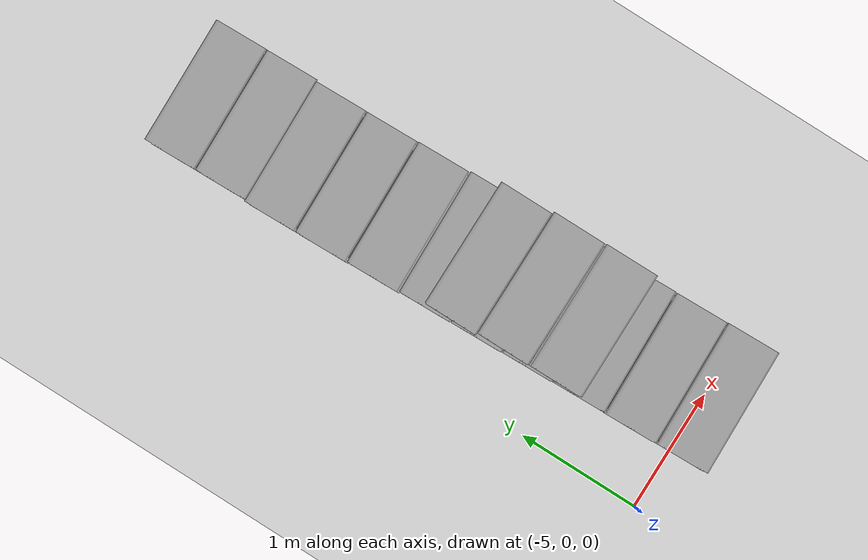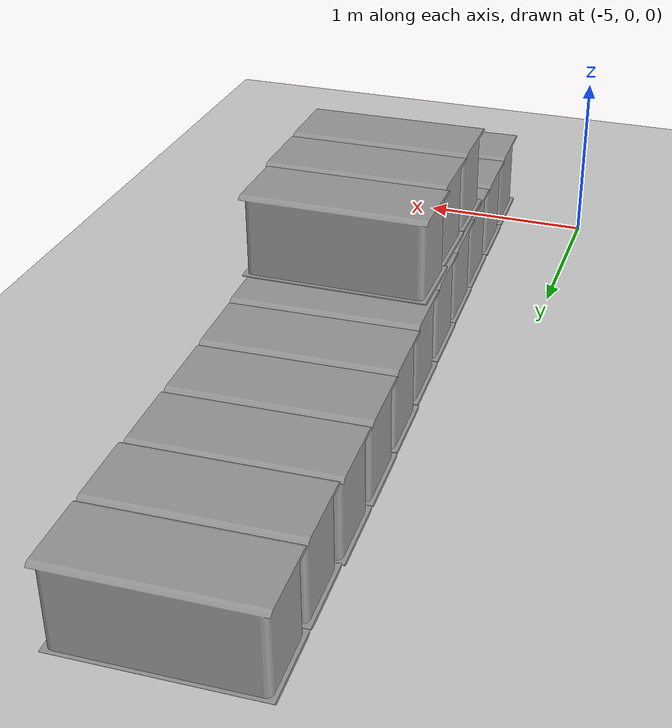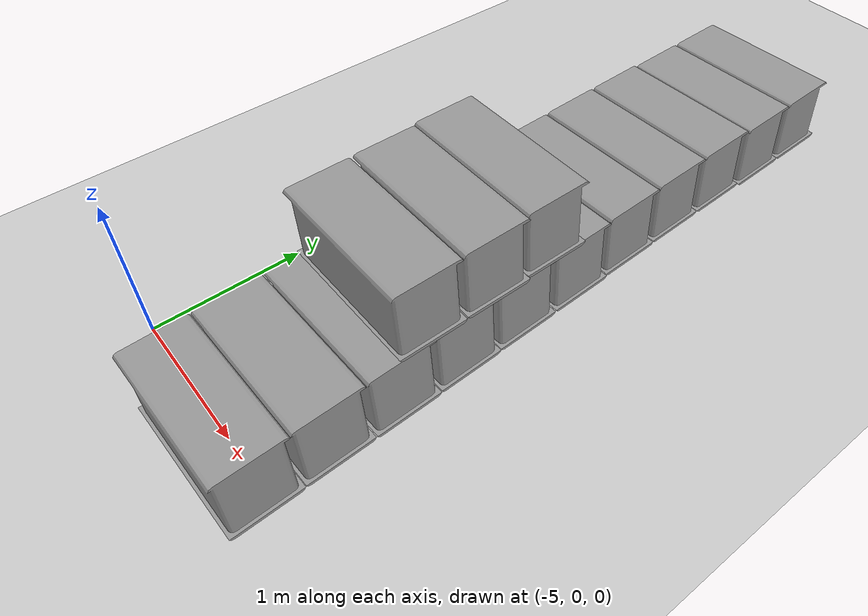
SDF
<sdf version="1.7">
 <world name="default">
  <model name="ground_plane">
   <static>1</static>
   <link name="link">
    <collision name="collision">
     <geometry><plane><normal>0 0 1</normal><size>100 100</size></plane></geometry>
     <surface>
      <contact><collide_bitmask>65535</collide_bitmask></contact>
      <friction><ode><mu>100</mu><mu2>50</mu2></ode></friction>
     </surface>
    </collision>
    <visual name="visual">
     <cast_shadows>0</cast_shadows>
     <geometry><plane><normal>0 0 1</normal><size>100 100</size></plane></geometry>
     <material>
      <script><uri>file://media/materials/scripts/gazebo.material</uri><name>Gazebo/Grey</name></script>
     </material>
    </visual>
   </link>
  </model>
  <model name="cotton_heng_clone">
   <model name="cotton_me">
    <link name="link_1">
     <inertial>
      <mass>1</mass>
      <inertia>
       <ixx>0.166667</ixx>
       <ixy>0</ixy>
       <ixz>0</ixz>
       <iyy>0.166667</iyy>
       <iyz>0</iyz>
       <izz>0.166667</izz>
      </inertia>
     </inertial>
     <visual name="visual">
      <geometry><mesh><uri>/home/cyun/cotton_box.stl</uri><scale>1 1 1</scale></mesh></geometry>
      <material>
       <lighting>1</lighting>
       <script><uri>file://media/materials/scripts/gazebo.material</uri><name>Gazebo/Grey</name></script>
       <shader type="pixel"/>
      </material>
     </visual>
     <collision name="collision">
      <geometry><mesh><uri>/home/cyun/cotton_box.stl</uri><scale>1 1 1</scale></mesh></geometry>
      <surface>
       <friction>
        <ode><mu>1</mu><mu2>1</mu2><fdir1>0 0 0</fdir1><slip1>0</slip1><slip2>0</slip2></ode>
        <torsional>
         <coefficient>1</coefficient>
         <patch_radius>0</patch_radius>
         <surface_radius>0</surface_radius>
         <use_patch_radius>1</use_patch_radius>
         <ode><slip>0</slip></ode>
        </torsional>
       </friction>
       <bounce><restitution_coefficient>0</restitution_coefficient><threshold>1e+06</threshold></bounce>
       <contact>
        <collide_without_contact>0</collide_without_contact>
        <collide_without_contact_bitmask>1</collide_without_contact_bitmask>
        <collide_bitmask>1</collide_bitmask>
        <ode>
         <soft_cfm>0</soft_cfm>
         <soft_erp>0.2</soft_erp>
         <kp>1e+13</kp>
         <kd>1</kd>
         <max_vel>0.01</max_vel>
         <min_depth>0</min_depth>
        </ode>
        <bullet>
         <split_impulse>1</split_impulse>
         <split_impulse_penetration_threshold>-0.01</split_impulse_penetration_threshold>
         <soft_cfm>0</soft_cfm>
         <soft_erp>0.2</soft_erp>
         <kp>1e+13</kp>
         <kd>1</kd>
        </bullet>
       </contact>
      </surface>
     </collision>
    </link>
    <static>0</static>
    <pose>-1.77996 -0.007813 0 0 -0 0</pose>
   </model>
   <model name="cotton_me_clone">
    <link name="link_1">
     <inertial>
      <mass>1</mass>
      <inertia>
       <ixx>0.166667</ixx>
       <ixy>0</ixy>
       <ixz>0</ixz>
       <iyy>0.166667</iyy>
       <iyz>0</iyz>
       <izz>0.166667</izz>
      </inertia>
     </inertial>
     <visual name="visual">
      <geometry><mesh><uri>/home/cyun/cotton_box.stl</uri><scale>1 1 1</scale></mesh></geometry>
      <material>
       <lighting>1</lighting>
       <script><uri>file://media/materials/scripts/gazebo.material</uri><name>Gazebo/Grey</name></script>
       <shader type="pixel"/>
      </material>
     </visual>
     <collision name="collision">
      <geometry><mesh><uri>/home/cyun/cotton_box.stl</uri><scale>1 1 1</scale></mesh></geometry>
      <surface>
       <friction>
        <ode><mu>1</mu><mu2>1</mu2><fdir1>0 0 0</fdir1><slip1>0</slip1><slip2>0</slip2></ode>
        <torsional>
         <coefficient>1</coefficient>
         <patch_radius>0</patch_radius>
         <surface_radius>0</surface_radius>
         <use_patch_radius>1</use_patch_radius>
         <ode><slip>0</slip></ode>
        </torsional>
       </friction>
       <bounce><restitution_coefficient>0</restitution_coefficient><threshold>1e+06</threshold></bounce>
       <contact>
        <collide_without_contact>0</collide_without_contact>
        <collide_without_contact_bitmask>1</collide_without_contact_bitmask>
        <collide_bitmask>1</collide_bitmask>
        <ode>
         <soft_cfm>0</soft_cfm>
         <soft_erp>0.2</soft_erp>
         <kp>1e+13</kp>
         <kd>1</kd>
         <max_vel>0.01</max_vel>
         <min_depth>0</min_depth>
        </ode>
        <bullet>
         <split_impulse>1</split_impulse>
         <split_impulse_penetration_threshold>-0.01</split_impulse_penetration_threshold>
         <soft_cfm>0</soft_cfm>
         <soft_erp>0.2</soft_erp>
         <kp>1e+13</kp>
         <kd>1</kd>
        </bullet>
       </contact>
      </surface>
     </collision>
    </link>
    <static>0</static>
    <pose>-1.33368 -0.009895 0 0 -0 0</pose>
   </model>
   <model name="cotton_me_clone_0">
    <link name="link_1">
     <inertial>
      <mass>1</mass>
      <inertia>
       <ixx>0.166667</ixx>
       <ixy>0</ixy>
       <ixz>0</ixz>
       <iyy>0.166667</iyy>
       <iyz>0</iyz>
       <izz>0.166667</izz>
      </inertia>
     </inertial>
     <visual name="visual">
      <geometry><mesh><uri>/home/cyun/cotton_box.stl</uri><scale>1 1 1</scale></mesh></geometry>
      <material>
       <lighting>1</lighting>
       <script><uri>file://media/materials/scripts/gazebo.material</uri><name>Gazebo/Grey</name></script>
       <shader type="pixel"/>
      </material>
     </visual>
     <collision name="collision">
      <geometry><mesh><uri>/home/cyun/cotton_box.stl</uri><scale>1 1 1</scale></mesh></geometry>
      <surface>
       <friction>
        <ode><mu>1</mu><mu2>1</mu2><fdir1>0 0 0</fdir1><slip1>0</slip1><slip2>0</slip2></ode>
        <torsional>
         <coefficient>1</coefficient>
         <patch_radius>0</patch_radius>
         <surface_radius>0</surface_radius>
         <use_patch_radius>1</use_patch_radius>
         <ode><slip>0</slip></ode>
        </torsional>
       </friction>
       <bounce><restitution_coefficient>0</restitution_coefficient><threshold>1e+06</threshold></bounce>
       <contact>
        <collide_without_contact>0</collide_without_contact>
        <collide_without_contact_bitmask>1</collide_without_contact_bitmask>
        <collide_bitmask>1</collide_bitmask>
        <ode>
         <soft_cfm>0</soft_cfm>
         <soft_erp>0.2</soft_erp>
         <kp>1e+13</kp>
         <kd>1</kd>
         <max_vel>0.01</max_vel>
         <min_depth>0</min_depth>
        </ode>
        <bullet>
         <split_impulse>1</split_impulse>
         <split_impulse_penetration_threshold>-0.01</split_impulse_penetration_threshold>
         <soft_cfm>0</soft_cfm>
         <soft_erp>0.2</soft_erp>
         <kp>1e+13</kp>
         <kd>1</kd>
        </bullet>
       </contact>
      </surface>
     </collision>
    </link>
    <static>0</static>
    <pose>-0.889452 -0.005774 0 0 -0 0</pose>
   </model>
   <model name="cotton_me_clone_1">
    <link name="link_1">
     <inertial>
      <mass>1</mass>
      <inertia>
       <ixx>0.166667</ixx>
       <ixy>0</ixy>
       <ixz>0</ixz>
       <iyy>0.166667</iyy>
       <iyz>0</iyz>
       <izz>0.166667</izz>
      </inertia>
     </inertial>
     <visual name="visual">
      <geometry><mesh><uri>/home/cyun/cotton_box.stl</uri><scale>1 1 1</scale></mesh></geometry>
      <material>
       <lighting>1</lighting>
       <script><uri>file://media/materials/scripts/gazebo.material</uri><name>Gazebo/Grey</name></script>
       <shader type="pixel"/>
      </material>
     </visual>
     <collision name="collision">
      <geometry><mesh><uri>/home/cyun/cotton_box.stl</uri><scale>1 1 1</scale></mesh></geometry>
      <surface>
       <friction>
        <ode><mu>1</mu><mu2>1</mu2><fdir1>0 0 0</fdir1><slip1>0</slip1><slip2>0</slip2></ode>
        <torsional>
         <coefficient>1</coefficient>
         <patch_radius>0</patch_radius>
         <surface_radius>0</surface_radius>
         <use_patch_radius>1</use_patch_radius>
         <ode><slip>0</slip></ode>
        </torsional>
       </friction>
       <bounce><restitution_coefficient>0</restitution_coefficient><threshold>1e+06</threshold></bounce>
       <contact>
        <collide_without_contact>0</collide_without_contact>
        <collide_without_contact_bitmask>1</collide_without_contact_bitmask>
        <collide_bitmask>1</collide_bitmask>
        <ode>
         <soft_cfm>0</soft_cfm>
         <soft_erp>0.2</soft_erp>
         <kp>1e+13</kp>
         <kd>1</kd>
         <max_vel>0.01</max_vel>
         <min_depth>0</min_depth>
        </ode>
        <bullet>
         <split_impulse>1</split_impulse>
         <split_impulse_penetration_threshold>-0.01</split_impulse_penetration_threshold>
         <soft_cfm>0</soft_cfm>
         <soft_erp>0.2</soft_erp>
         <kp>1e+13</kp>
         <kd>1</kd>
        </bullet>
       </contact>
      </surface>
     </collision>
    </link>
    <static>0</static>
    <pose>-0.445737 -0.001627 0 0 -0 0</pose>
   </model>
   <model name="cotton_me_clone_2">
    <link name="link_1">
     <inertial>
      <mass>1</mass>
      <inertia>
       <ixx>0.166667</ixx>
       <ixy>0</ixy>
       <ixz>0</ixz>
       <iyy>0.166667</iyy>
       <iyz>0</iyz>
       <izz>0.166667</izz>
      </inertia>
     </inertial>
     <visual name="visual">
      <geometry><mesh><uri>/home/cyun/cotton_box.stl</uri><scale>1 1 1</scale></mesh></geometry>
      <material>
       <lighting>1</lighting>
       <script><uri>file://media/materials/scripts/gazebo.material</uri><name>Gazebo/Grey</name></script>
       <shader type="pixel"/>
      </material>
     </visual>
     <collision name="collision">
      <geometry><mesh><uri>/home/cyun/cotton_box.stl</uri><scale>1 1 1</scale></mesh></geometry>
      <surface>
       <friction>
        <ode><mu>1</mu><mu2>1</mu2><fdir1>0 0 0</fdir1><slip1>0</slip1><slip2>0</slip2></ode>
        <torsional>
         <coefficient>1</coefficient>
         <patch_radius>0</patch_radius>
         <surface_radius>0</surface_radius>
         <use_patch_radius>1</use_patch_radius>
         <ode><slip>0</slip></ode>
        </torsional>
       </friction>
       <bounce><restitution_coefficient>0</restitution_coefficient><threshold>1e+06</threshold></bounce>
       <contact>
        <collide_without_contact>0</collide_without_contact>
        <collide_without_contact_bitmask>1</collide_without_contact_bitmask>
        <collide_bitmask>1</collide_bitmask>
        <ode>
         <soft_cfm>0</soft_cfm>
         <soft_erp>0.2</soft_erp>
         <kp>1e+13</kp>
         <kd>1</kd>
         <max_vel>0.01</max_vel>
         <min_depth>0</min_depth>
        </ode>
        <bullet>
         <split_impulse>1</split_impulse>
         <split_impulse_penetration_threshold>-0.01</split_impulse_penetration_threshold>
         <soft_cfm>0</soft_cfm>
         <soft_erp>0.2</soft_erp>
         <kp>1e+13</kp>
         <kd>1</kd>
        </bullet>
       </contact>
      </surface>
     </collision>
    </link>
    <static>0</static>
    <pose>0.001194 0.000886 0 0 -0 0</pose>
   </model>
   <model name="cotton_me_clone_3">
    <link name="link_1">
     <inertial>
      <mass>1</mass>
      <inertia>
       <ixx>0.166667</ixx>
       <ixy>0</ixy>
       <ixz>0</ixz>
       <iyy>0.166667</iyy>
       <iyz>0</iyz>
       <izz>0.166667</izz>
      </inertia>
     </inertial>
     <visual name="visual">
      <geometry><mesh><uri>/home/cyun/cotton_box.stl</uri><scale>1 1 1</scale></mesh></geometry>
      <material>
       <lighting>1</lighting>
       <script><uri>file://media/materials/scripts/gazebo.material</uri><name>Gazebo/Grey</name></script>
       <shader type="pixel"/>
      </material>
     </visual>
     <collision name="collision">
      <geometry><mesh><uri>/home/cyun/cotton_box.stl</uri><scale>1 1 1</scale></mesh></geometry>
      <surface>
       <friction>
        <ode><mu>1</mu><mu2>1</mu2><fdir1>0 0 0</fdir1><slip1>0</slip1><slip2>0</slip2></ode>
        <torsional>
         <coefficient>1</coefficient>
         <patch_radius>0</patch_radius>
         <surface_radius>0</surface_radius>
         <use_patch_radius>1</use_patch_radius>
         <ode><slip>0</slip></ode>
        </torsional>
       </friction>
       <bounce><restitution_coefficient>0</restitution_coefficient><threshold>1e+06</threshold></bounce>
       <contact>
        <collide_without_contact>0</collide_without_contact>
        <collide_without_contact_bitmask>1</collide_without_contact_bitmask>
        <collide_bitmask>1</collide_bitmask>
        <ode>
         <soft_cfm>0</soft_cfm>
         <soft_erp>0.2</soft_erp>
         <kp>1e+13</kp>
         <kd>1</kd>
         <max_vel>0.01</max_vel>
         <min_depth>0</min_depth>
        </ode>
        <bullet>
         <split_impulse>1</split_impulse>
         <split_impulse_penetration_threshold>-0.01</split_impulse_penetration_threshold>
         <soft_cfm>0</soft_cfm>
         <soft_erp>0.2</soft_erp>
         <kp>1e+13</kp>
         <kd>1</kd>
        </bullet>
       </contact>
      </surface>
     </collision>
    </link>
    <static>0</static>
    <pose>0.448503 0.010252 0 0 -0 0</pose>
   </model>
   <model name="cotton_me_clone_4">
    <link name="link_1">
     <inertial>
      <mass>1</mass>
      <inertia>
       <ixx>0.166667</ixx>
       <ixy>0</ixy>
       <ixz>0</ixz>
       <iyy>0.166667</iyy>
       <iyz>0</iyz>
       <izz>0.166667</izz>
      </inertia>
     </inertial>
     <visual name="visual">
      <geometry><mesh><uri>/home/cyun/cotton_box.stl</uri><scale>1 1 1</scale></mesh></geometry>
      <material>
       <lighting>1</lighting>
       <script><uri>file://media/materials/scripts/gazebo.material</uri><name>Gazebo/Grey</name></script>
       <shader type="pixel"/>
      </material>
     </visual>
     <collision name="collision">
      <geometry><mesh><uri>/home/cyun/cotton_box.stl</uri><scale>1 1 1</scale></mesh></geometry>
      <surface>
       <friction>
        <ode><mu>1</mu><mu2>1</mu2><fdir1>0 0 0</fdir1><slip1>0</slip1><slip2>0</slip2></ode>
        <torsional>
         <coefficient>1</coefficient>
         <patch_radius>0</patch_radius>
         <surface_radius>0</surface_radius>
         <use_patch_radius>1</use_patch_radius>
         <ode><slip>0</slip></ode>
        </torsional>
       </friction>
       <bounce><restitution_coefficient>0</restitution_coefficient><threshold>1e+06</threshold></bounce>
       <contact>
        <collide_without_contact>0</collide_without_contact>
        <collide_without_contact_bitmask>1</collide_without_contact_bitmask>
        <collide_bitmask>1</collide_bitmask>
        <ode>
         <soft_cfm>0</soft_cfm>
         <soft_erp>0.2</soft_erp>
         <kp>1e+13</kp>
         <kd>1</kd>
         <max_vel>0.01</max_vel>
         <min_depth>0</min_depth>
        </ode>
        <bullet>
         <split_impulse>1</split_impulse>
         <split_impulse_penetration_threshold>-0.01</split_impulse_penetration_threshold>
         <soft_cfm>0</soft_cfm>
         <soft_erp>0.2</soft_erp>
         <kp>1e+13</kp>
         <kd>1</kd>
        </bullet>
       </contact>
      </surface>
     </collision>
    </link>
    <static>0</static>
    <pose>0.894659 0.014624 0 0 -0 0</pose>
   </model>
   <model name="cotton_me_clone_5">
    <link name="link_1">
     <inertial>
      <mass>1</mass>
      <inertia>
       <ixx>0.166667</ixx>
       <ixy>0</ixy>
       <ixz>0</ixz>
       <iyy>0.166667</iyy>
       <iyz>0</iyz>
       <izz>0.166667</izz>
      </inertia>
     </inertial>
     <visual name="visual">
      <geometry><mesh><uri>/home/cyun/cotton_box.stl</uri><scale>1 1 1</scale></mesh></geometry>
      <material>
       <lighting>1</lighting>
       <script><uri>file://media/materials/scripts/gazebo.material</uri><name>Gazebo/Grey</name></script>
       <shader type="pixel"/>
      </material>
     </visual>
     <collision name="collision">
      <geometry><mesh><uri>/home/cyun/cotton_box.stl</uri><scale>1 1 1</scale></mesh></geometry>
      <surface>
       <friction>
        <ode><mu>1</mu><mu2>1</mu2><fdir1>0 0 0</fdir1><slip1>0</slip1><slip2>0</slip2></ode>
        <torsional>
         <coefficient>1</coefficient>
         <patch_radius>0</patch_radius>
         <surface_radius>0</surface_radius>
         <use_patch_radius>1</use_patch_radius>
         <ode><slip>0</slip></ode>
        </torsional>
       </friction>
       <bounce><restitution_coefficient>0</restitution_coefficient><threshold>1e+06</threshold></bounce>
       <contact>
        <collide_without_contact>0</collide_without_contact>
        <collide_without_contact_bitmask>1</collide_without_contact_bitmask>
        <collide_bitmask>1</collide_bitmask>
        <ode>
         <soft_cfm>0</soft_cfm>
         <soft_erp>0.2</soft_erp>
         <kp>1e+13</kp>
         <kd>1</kd>
         <max_vel>0.01</max_vel>
         <min_depth>0</min_depth>
        </ode>
        <bullet>
         <split_impulse>1</split_impulse>
         <split_impulse_penetration_threshold>-0.01</split_impulse_penetration_threshold>
         <soft_cfm>0</soft_cfm>
         <soft_erp>0.2</soft_erp>
         <kp>1e+13</kp>
         <kd>1</kd>
        </bullet>
       </contact>
      </surface>
     </collision>
    </link>
    <static>0</static>
    <pose>1.33945 0.013464 0 0 -0 0</pose>
   </model>
   <model name="cotton_me_clone_6">
    <link name="link_1">
     <inertial>
      <mass>1</mass>
      <inertia>
       <ixx>0.166667</ixx>
       <ixy>0</ixy>
       <ixz>0</ixz>
       <iyy>0.166667</iyy>
       <iyz>0</iyz>
       <izz>0.166667</izz>
      </inertia>
     </inertial>
     <visual name="visual">
      <geometry><mesh><uri>/home/cyun/cotton_box.stl</uri><scale>1 1 1</scale></mesh></geometry>
      <material>
       <lighting>1</lighting>
       <script><uri>file://media/materials/scripts/gazebo.material</uri><name>Gazebo/Grey</name></script>
       <shader type="pixel"/>
      </material>
     </visual>
     <collision name="collision">
      <geometry><mesh><uri>/home/cyun/cotton_box.stl</uri><scale>1 1 1</scale></mesh></geometry>
      <surface>
       <friction>
        <ode><mu>1</mu><mu2>1</mu2><fdir1>0 0 0</fdir1><slip1>0</slip1><slip2>0</slip2></ode>
        <torsional>
         <coefficient>1</coefficient>
         <patch_radius>0</patch_radius>
         <surface_radius>0</surface_radius>
         <use_patch_radius>1</use_patch_radius>
         <ode><slip>0</slip></ode>
        </torsional>
       </friction>
       <bounce><restitution_coefficient>0</restitution_coefficient><threshold>1e+06</threshold></bounce>
       <contact>
        <collide_without_contact>0</collide_without_contact>
        <collide_without_contact_bitmask>1</collide_without_contact_bitmask>
        <collide_bitmask>1</collide_bitmask>
        <ode>
         <soft_cfm>0</soft_cfm>
         <soft_erp>0.2</soft_erp>
         <kp>1e+13</kp>
         <kd>1</kd>
         <max_vel>0.01</max_vel>
         <min_depth>0</min_depth>
        </ode>
        <bullet>
         <split_impulse>1</split_impulse>
         <split_impulse_penetration_threshold>-0.01</split_impulse_penetration_threshold>
         <soft_cfm>0</soft_cfm>
         <soft_erp>0.2</soft_erp>
         <kp>1e+13</kp>
         <kd>1</kd>
        </bullet>
       </contact>
      </surface>
     </collision>
    </link>
    <static>0</static>
    <pose>1.77292 -0.000762 0 0 -0 0</pose>
   </model>
   <model name="cotton_me_clone_7">
    <link name="link_1">
     <inertial>
      <mass>1</mass>
      <inertia>
       <ixx>0.166667</ixx>
       <ixy>0</ixy>
       <ixz>0</ixz>
       <iyy>0.166667</iyy>
       <iyz>0</iyz>
       <izz>0.166667</izz>
      </inertia>
     </inertial>
     <visual name="visual">
      <geometry><mesh><uri>/home/cyun/cotton_box.stl</uri><scale>1 1 1</scale></mesh></geometry>
      <material>
       <lighting>1</lighting>
       <script><uri>file://media/materials/scripts/gazebo.material</uri><name>Gazebo/Grey</name></script>
       <shader type="pixel"/>
      </material>
     </visual>
     <collision name="collision">
      <geometry><mesh><uri>/home/cyun/cotton_box.stl</uri><scale>1 1 1</scale></mesh></geometry>
      <surface>
       <friction>
        <ode><mu>1</mu><mu2>1</mu2><fdir1>0 0 0</fdir1><slip1>0</slip1><slip2>0</slip2></ode>
        <torsional>
         <coefficient>1</coefficient>
         <patch_radius>0</patch_radius>
         <surface_radius>0</surface_radius>
         <use_patch_radius>1</use_patch_radius>
         <ode><slip>0</slip></ode>
        </torsional>
       </friction>
       <bounce><restitution_coefficient>0</restitution_coefficient><threshold>1e+06</threshold></bounce>
       <contact>
        <collide_without_contact>0</collide_without_contact>
        <collide_without_contact_bitmask>1</collide_without_contact_bitmask>
        <collide_bitmask>1</collide_bitmask>
        <ode>
         <soft_cfm>0</soft_cfm>
         <soft_erp>0.2</soft_erp>
         <kp>1e+13</kp>
         <kd>1</kd>
         <max_vel>0.01</max_vel>
         <min_depth>0</min_depth>
        </ode>
        <bullet>
         <split_impulse>1</split_impulse>
         <split_impulse_penetration_threshold>-0.01</split_impulse_penetration_threshold>
         <soft_cfm>0</soft_cfm>
         <soft_erp>0.2</soft_erp>
         <kp>1e+13</kp>
         <kd>1</kd>
        </bullet>
       </contact>
      </surface>
     </collision>
    </link>
    <static>0</static>
    <pose>2.21576 -0.001881 0 0 -0 0</pose>
   </model>
   <model name="cotton_me_clone_8">
    <link name="link_1">
     <inertial>
      <mass>1</mass>
      <inertia>
       <ixx>0.166667</ixx>
       <ixy>0</ixy>
       <ixz>0</ixz>
       <iyy>0.166667</iyy>
       <iyz>0</iyz>
       <izz>0.166667</izz>
      </inertia>
     </inertial>
     <visual name="visual">
      <geometry><mesh><uri>/home/cyun/cotton_box.stl</uri><scale>1 1 1</scale></mesh></geometry>
      <material>
       <lighting>1</lighting>
       <script><uri>file://media/materials/scripts/gazebo.material</uri><name>Gazebo/Grey</name></script>
       <shader type="pixel"/>
      </material>
     </visual>
     <collision name="collision">
      <geometry><mesh><uri>/home/cyun/cotton_box.stl</uri><scale>1 1 1</scale></mesh></geometry>
      <surface>
       <friction>
        <ode><mu>1</mu><mu2>1</mu2><fdir1>0 0 0</fdir1><slip1>0</slip1><slip2>0</slip2></ode>
        <torsional>
         <coefficient>1</coefficient>
         <patch_radius>0</patch_radius>
         <surface_radius>0</surface_radius>
         <use_patch_radius>1</use_patch_radius>
         <ode><slip>0</slip></ode>
        </torsional>
       </friction>
       <bounce><restitution_coefficient>0</restitution_coefficient><threshold>1e+06</threshold></bounce>
       <contact>
        <collide_without_contact>0</collide_without_contact>
        <collide_without_contact_bitmask>1</collide_without_contact_bitmask>
        <collide_bitmask>1</collide_bitmask>
        <ode>
         <soft_cfm>0</soft_cfm>
         <soft_erp>0.2</soft_erp>
         <kp>1e+13</kp>
         <kd>1</kd>
         <max_vel>0.01</max_vel>
         <min_depth>0</min_depth>
        </ode>
        <bullet>
         <split_impulse>1</split_impulse>
         <split_impulse_penetration_threshold>-0.01</split_impulse_penetration_threshold>
         <soft_cfm>0</soft_cfm>
         <soft_erp>0.2</soft_erp>
         <kp>1e+13</kp>
         <kd>1</kd>
        </bullet>
       </contact>
      </surface>
     </collision>
    </link>
    <static>0</static>
    <pose>-2.22367 -0.011477 0 0 -0 0</pose>
   </model>
   <static>0</static>
   <pose>-4.05646 2.15955 0.019994 -1.1e-05 -0 1.59908</pose>
  </model>
  <model name="cotton_me_0_clone_6_clone_0_clone_clone_17">
   <link name="link_1">
    <inertial>
     <mass>1</mass>
     <inertia>
      <ixx>0.166667</ixx>
      <ixy>0</ixy>
      <ixz>0</ixz>
      <iyy>0.166667</iyy>
      <iyz>0</iyz>
      <izz>0.166667</izz>
     </inertia>
    </inertial>
    <visual name="visual">
     <geometry><mesh><uri>/home/cyun/cotton_box.stl</uri><scale>1 1 1</scale></mesh></geometry>
     <material>
      <lighting>1</lighting>
      <script><uri>file://media/materials/scripts/gazebo.material</uri><name>Gazebo/Grey</name></script>
      <shader type="pixel"/>
     </material>
    </visual>
    <collision name="collision">
     <geometry><mesh><uri>/home/cyun/cotton_box.stl</uri><scale>1 1 1</scale></mesh></geometry>
     <surface>
      <friction>
       <ode><mu>1</mu><mu2>1</mu2><fdir1>0 0 0</fdir1><slip1>0</slip1><slip2>0</slip2></ode>
       <torsional>
        <coefficient>1</coefficient>
        <patch_radius>0</patch_radius>
        <surface_radius>0</surface_radius>
        <use_patch_radius>1</use_patch_radius>
        <ode><slip>0</slip></ode>
       </torsional>
      </friction>
      <bounce><restitution_coefficient>0</restitution_coefficient><threshold>1e+06</threshold></bounce>
      <contact>
       <collide_without_contact>0</collide_without_contact>
       <collide_without_contact_bitmask>1</collide_without_contact_bitmask>
       <collide_bitmask>1</collide_bitmask>
       <ode>
        <soft_cfm>0</soft_cfm>
        <soft_erp>0.2</soft_erp>
        <kp>1e+13</kp>
        <kd>1</kd>
        <max_vel>0.01</max_vel>
        <min_depth>0</min_depth>
       </ode>
       <bullet>
        <split_impulse>1</split_impulse>
        <split_impulse_penetration_threshold>-0.01</split_impulse_penetration_threshold>
        <soft_cfm>0</soft_cfm>
        <soft_erp>0.2</soft_erp>
        <kp>1e+13</kp>
        <kd>1</kd>
       </bullet>
      </contact>
     </surface>
    </collision>
   </link>
   <static>0</static>
   <pose>-4.00699 1.03979 0.509985 -4e-06 0.000538 1.57658</pose>
  </model>
  <model name="cotton_me_0_clone_6_clone_0_clone_clone_18">
   <link name="link_1">
    <inertial>
     <mass>1</mass>
     <inertia>
      <ixx>0.166667</ixx>
      <ixy>0</ixy>
      <ixz>0</ixz>
      <iyy>0.166667</iyy>
      <iyz>0</iyz>
      <izz>0.166667</izz>
     </inertia>
    </inertial>
    <visual name="visual">
     <geometry><mesh><uri>/home/cyun/cotton_box.stl</uri><scale>1 1 1</scale></mesh></geometry>
     <material>
      <lighting>1</lighting>
      <script><uri>file://media/materials/scripts/gazebo.material</uri><name>Gazebo/Grey</name></script>
      <shader type="pixel"/>
     </material>
    </visual>
    <collision name="collision">
     <geometry><mesh><uri>/home/cyun/cotton_box.stl</uri><scale>1 1 1</scale></mesh></geometry>
     <surface>
      <friction>
       <ode><mu>1</mu><mu2>1</mu2><fdir1>0 0 0</fdir1><slip1>0</slip1><slip2>0</slip2></ode>
       <torsional>
        <coefficient>1</coefficient>
        <patch_radius>0</patch_radius>
        <surface_radius>0</surface_radius>
        <use_patch_radius>1</use_patch_radius>
        <ode><slip>0</slip></ode>
       </torsional>
      </friction>
      <bounce><restitution_coefficient>0</restitution_coefficient><threshold>1e+06</threshold></bounce>
      <contact>
       <collide_without_contact>0</collide_without_contact>
       <collide_without_contact_bitmask>1</collide_without_contact_bitmask>
       <collide_bitmask>1</collide_bitmask>
       <ode>
        <soft_cfm>0</soft_cfm>
        <soft_erp>0.2</soft_erp>
        <kp>1e+13</kp>
        <kd>1</kd>
        <max_vel>0.01</max_vel>
        <min_depth>0</min_depth>
       </ode>
       <bullet>
        <split_impulse>1</split_impulse>
        <split_impulse_penetration_threshold>-0.01</split_impulse_penetration_threshold>
        <soft_cfm>0</soft_cfm>
        <soft_erp>0.2</soft_erp>
        <kp>1e+13</kp>
        <kd>1</kd>
       </bullet>
      </contact>
     </surface>
    </collision>
   </link>
   <static>0</static>
   <pose>-4.01398 1.4895 0.510001 -1e-06 9e-06 1.57219</pose>
  </model>
  <model name="cotton_me_0_clone_6_clone_0_clone_clone_19">
   <link name="link_1">
    <inertial>
     <mass>1</mass>
     <inertia>
      <ixx>0.166667</ixx>
      <ixy>0</ixy>
      <ixz>0</ixz>
      <iyy>0.166667</iyy>
      <iyz>0</iyz>
      <izz>0.166667</izz>
     </inertia>
    </inertial>
    <visual name="visual">
     <geometry><mesh><uri>/home/cyun/cotton_box.stl</uri><scale>1 1 1</scale></mesh></geometry>
     <material>
      <lighting>1</lighting>
      <script><uri>file://media/materials/scripts/gazebo.material</uri><name>Gazebo/Grey</name></script>
      <shader type="pixel"/>
     </material>
    </visual>
    <collision name="collision">
     <geometry><mesh><uri>/home/cyun/cotton_box.stl</uri><scale>1 1 1</scale></mesh></geometry>
     <surface>
      <friction>
       <ode><mu>1</mu><mu2>1</mu2><fdir1>0 0 0</fdir1><slip1>0</slip1><slip2>0</slip2></ode>
       <torsional>
        <coefficient>1</coefficient>
        <patch_radius>0</patch_radius>
        <surface_radius>0</surface_radius>
        <use_patch_radius>1</use_patch_radius>
        <ode><slip>0</slip></ode>
       </torsional>
      </friction>
      <bounce><restitution_coefficient>0</restitution_coefficient><threshold>1e+06</threshold></bounce>
      <contact>
       <collide_without_contact>0</collide_without_contact>
       <collide_without_contact_bitmask>1</collide_without_contact_bitmask>
       <collide_bitmask>1</collide_bitmask>
       <ode>
        <soft_cfm>0</soft_cfm>
        <soft_erp>0.2</soft_erp>
        <kp>1e+13</kp>
        <kd>1</kd>
        <max_vel>0.01</max_vel>
        <min_depth>0</min_depth>
       </ode>
       <bullet>
        <split_impulse>1</split_impulse>
        <split_impulse_penetration_threshold>-0.01</split_impulse_penetration_threshold>
        <soft_cfm>0</soft_cfm>
        <soft_erp>0.2</soft_erp>
        <kp>1e+13</kp>
        <kd>1</kd>
       </bullet>
      </contact>
     </surface>
    </collision>
   </link>
   <static>0</static>
   <pose>-4.03504 1.93044 0.510039 1.7e-05 -0.000168 1.5728</pose>
  </model>
 </world>
</sdf>
